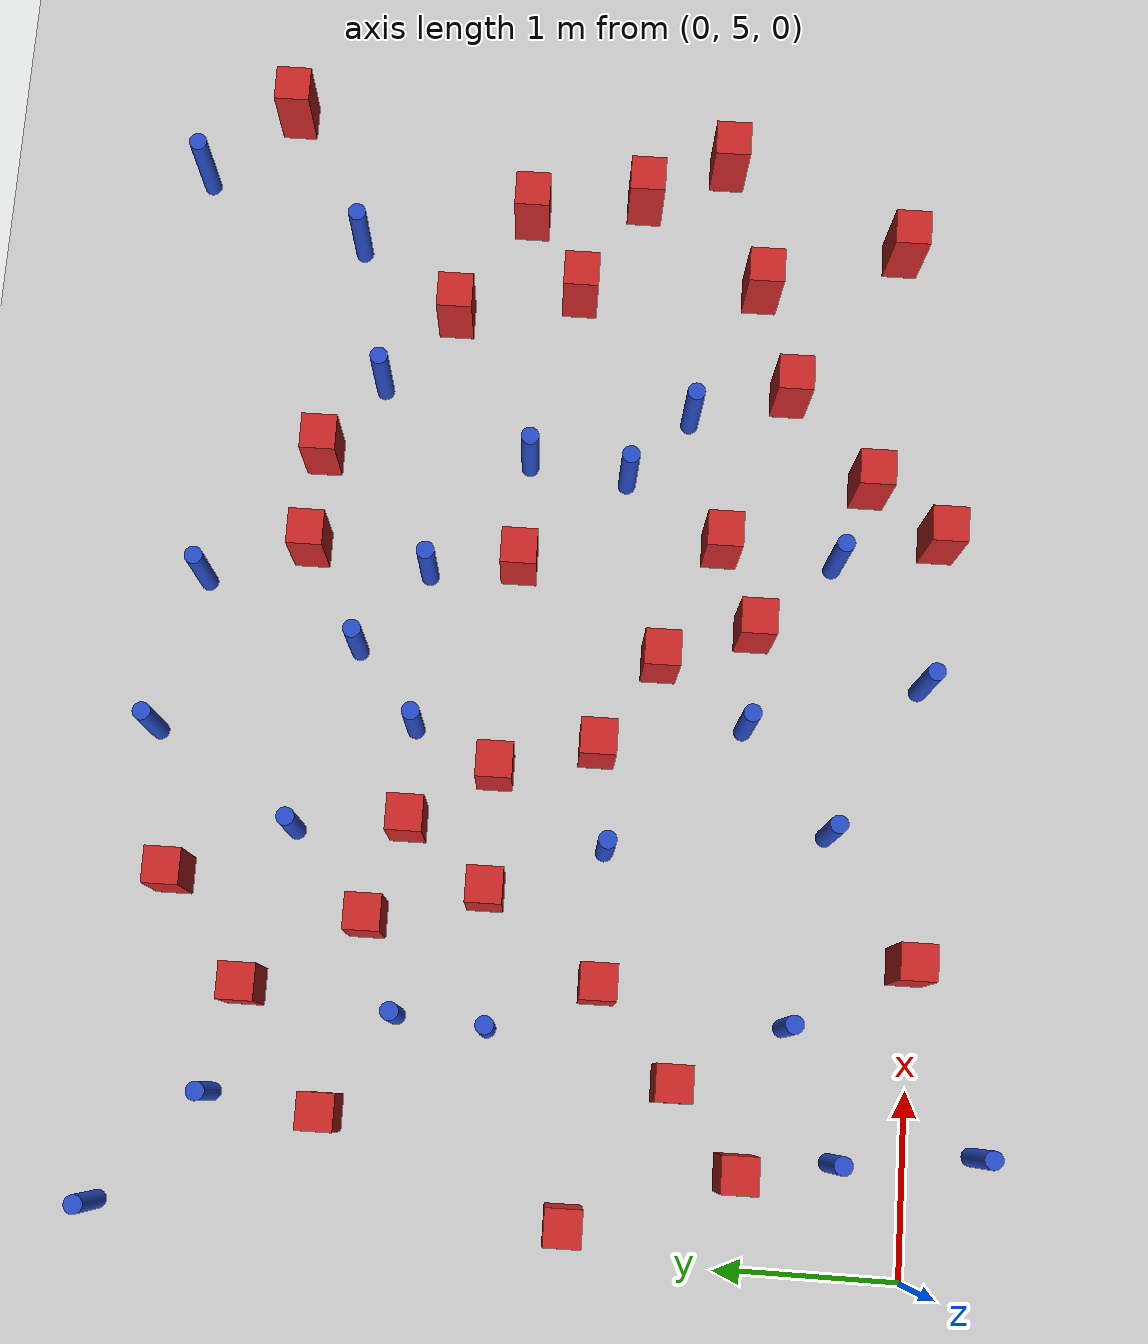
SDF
<sdf version="1.6">
 <world name="default">
  <model name="ground_plane">
   <static>1</static>
   <link name="link">
    <collision name="collision">
     <geometry><plane><normal>0 0 1</normal><size>100 100</size></plane></geometry>
     <surface><friction><ode><mu>100</mu><mu2>50</mu2></ode></friction></surface>
    </collision>
    <visual name="visual">
     <cast_shadows>0</cast_shadows>
     <geometry><plane><normal>0 0 1</normal><size>100 100</size></plane></geometry>
     <material>
      <ambient>1.0 1.0 1.0 1.0</ambient>
      <diffuse>0.8 0.8 0.8 1.0</diffuse>
      <specular>0.01 0.01 0.01 1.000000</specular>
     </material>
    </visual>
   </link>
  </model>
  <model name="square_post_obstacle3">
   <static>true</static>
   <pose>1.32995403728 8.61130214295 1.91545236811e-07 -7.35059704564e-06 1.12565212e-07 2.39332434364e-05</pose>
   <link name="link">
    <pose>0 0 0.25 0 -0 0</pose>
    <inertial>
     <mass>100</mass>
     <inertia>
      <ixx>0.166667</ixx>
      <ixy>0</ixy>
      <ixz>0</ixz>
      <iyy>0.166667</iyy>
      <iyz>0</iyz>
      <izz>0.166667</izz>
     </inertia>
    </inertial>
    <collision name="collision"><geometry><box><size>.2 .2 .5</size></box></geometry></collision>
    <visual name="visual">
     <geometry><box><size>.2 .2 .5</size></box></geometry>
     <material>
      <script><name>Gazebo/Red</name><uri>file://media/materials/scripts/gazebo.material</uri></script>
     </material>
    </visual>
   </link>
  </model>
  <model name="square_post_obstacle9">
   <static>true</static>
   <pose>4.37427200818 5.32072493143 1.91545236811e-07 -7.35059704564e-06 1.12565212e-07 2.39332434364e-05</pose>
   <link name="link">
    <pose>0 0 0.25 0 -0 0</pose>
    <inertial>
     <mass>100</mass>
     <inertia>
      <ixx>0.166667</ixx>
      <ixy>0</ixy>
      <ixz>0</ixz>
      <iyy>0.166667</iyy>
      <iyz>0</iyz>
      <izz>0.166667</izz>
     </inertia>
    </inertial>
    <collision name="collision"><geometry><box><size>.2 .2 .5</size></box></geometry></collision>
    <visual name="visual">
     <geometry><box><size>.2 .2 .5</size></box></geometry>
     <material>
      <script><name>Gazebo/Red</name><uri>file://media/materials/scripts/gazebo.material</uri></script>
     </material>
    </visual>
   </link>
  </model>
  <model name="square_post_obstacle15">
   <static>true</static>
   <pose>3.79252274136 7.28375643206 1.91545236811e-07 -7.35059704564e-06 1.12565212e-07 2.39332434364e-05</pose>
   <link name="link">
    <pose>0 0 0.25 0 -0 0</pose>
    <inertial>
     <mass>100</mass>
     <inertia>
      <ixx>0.166667</ixx>
      <ixy>0</ixy>
      <ixz>0</ixz>
      <iyy>0.166667</iyy>
      <iyz>0</iyz>
      <izz>0.166667</izz>
     </inertia>
    </inertial>
    <collision name="collision"><geometry><box><size>.2 .2 .5</size></box></geometry></collision>
    <visual name="visual">
     <geometry><box><size>.2 .2 .5</size></box></geometry>
     <material>
      <script><name>Gazebo/Red</name><uri>file://media/materials/scripts/gazebo.material</uri></script>
     </material>
    </visual>
   </link>
  </model>
  <model name="square_post_obstacle17">
   <static>true</static>
   <pose>3.96532546582 6.1500377641 1.91545236811e-07 -7.35059704564e-06 1.12565212e-07 2.39332434364e-05</pose>
   <link name="link">
    <pose>0 0 0.25 0 -0 0</pose>
    <inertial>
     <mass>100</mass>
     <inertia>
      <ixx>0.166667</ixx>
      <ixy>0</ixy>
      <ixz>0</ixz>
      <iyy>0.166667</iyy>
      <iyz>0</iyz>
      <izz>0.166667</izz>
     </inertia>
    </inertial>
    <collision name="collision"><geometry><box><size>.2 .2 .5</size></box></geometry></collision>
    <visual name="visual">
     <geometry><box><size>.2 .2 .5</size></box></geometry>
     <material>
      <script><name>Gazebo/Red</name><uri>file://media/materials/scripts/gazebo.material</uri></script>
     </material>
    </visual>
   </link>
  </model>
  <model name="pole_obstacle21">
   <static>true</static>
   <pose>4.71020864646 6.3569376007 7.38925637345e-09 -8.47170692796e-08 1.24976764786e-08 -1.74513093032e-07</pose>
   <link name="link">
    <pose>0 0 0.3 0 -0 0</pose>
    <inertial>
     <mass>1</mass>
     <inertia><ixx>0.145833</ixx><ixy>0</ixy><ixz>0</ixz><iyy>0.145833</iyy><iyz>0</iyz><izz>0.125</izz></inertia>
    </inertial>
    <collision name="collision">
     <geometry><cylinder><radius>0.05</radius><length>.6</length></cylinder></geometry>
    </collision>
    <visual name="visual">
     <geometry><cylinder><radius>0.05</radius><length>.6</length></cylinder></geometry>
     <material>
      <script><name>Gazebo/Blue</name><uri>file://media/materials/scripts/gazebo.material</uri></script>
     </material>
    </visual>
   </link>
  </model>
  <model name="square_post_obstacle18">
   <static>true</static>
   <pose>5.90849007862 7.34614354488 1.91545236811e-07 -7.35059704564e-06 1.12565212e-07 2.39332434364e-05</pose>
   <link name="link">
    <pose>0 0 0.25 0 -0 0</pose>
    <inertial>
     <mass>100</mass>
     <inertia>
      <ixx>0.166667</ixx>
      <ixy>0</ixy>
      <ixz>0</ixz>
      <iyy>0.166667</iyy>
      <iyz>0</iyz>
      <izz>0.166667</izz>
     </inertia>
    </inertial>
    <collision name="collision"><geometry><box><size>.2 .2 .5</size></box></geometry></collision>
    <visual name="visual">
     <geometry><box><size>.2 .2 .5</size></box></geometry>
     <material>
      <script><name>Gazebo/Red</name><uri>file://media/materials/scripts/gazebo.material</uri></script>
     </material>
    </visual>
   </link>
  </model>
  <model name="square_post_obstacle26">
   <static>true</static>
   <pose>0.688104472067 8.13663412658 1.91545236811e-07 -7.35059704564e-06 1.12565212e-07 2.39332434364e-05</pose>
   <link name="link">
    <pose>0 0 0.25 0 -0 0</pose>
    <inertial>
     <mass>100</mass>
     <inertia>
      <ixx>0.166667</ixx>
      <ixy>0</ixy>
      <ixz>0</ixz>
      <iyy>0.166667</iyy>
      <iyz>0</iyz>
      <izz>0.166667</izz>
     </inertia>
    </inertial>
    <collision name="collision"><geometry><box><size>.2 .2 .5</size></box></geometry></collision>
    <visual name="visual">
     <geometry><box><size>.2 .2 .5</size></box></geometry>
     <material>
      <script><name>Gazebo/Red</name><uri>file://media/materials/scripts/gazebo.material</uri></script>
     </material>
    </visual>
   </link>
  </model>
  <model name="square_post_obstacle30">
   <static>true</static>
   <pose>4.37536552659 8.44583233603 1.91545236811e-07 -7.35059704564e-06 1.12565212e-07 2.39332434364e-05</pose>
   <link name="link">
    <pose>0 0 0.25 0 -0 0</pose>
    <inertial>
     <mass>100</mass>
     <inertia>
      <ixx>0.166667</ixx>
      <ixy>0</ixy>
      <ixz>0</ixz>
      <iyy>0.166667</iyy>
      <iyz>0</iyz>
      <izz>0.166667</izz>
     </inertia>
    </inertial>
    <collision name="collision"><geometry><box><size>.2 .2 .5</size></box></geometry></collision>
    <visual name="visual">
     <geometry><box><size>.2 .2 .5</size></box></geometry>
     <material>
      <script><name>Gazebo/Red</name><uri>file://media/materials/scripts/gazebo.material</uri></script>
     </material>
    </visual>
   </link>
  </model>
  <model name="pole_obstacle36">
   <static>true</static>
   <pose>4.39219433855 7.26131646746 7.38925637345e-09 -8.47170692796e-08 1.24976764786e-08 -1.74513093032e-07</pose>
   <link name="link">
    <pose>0 0 0.3 0 -0 0</pose>
    <inertial>
     <mass>1</mass>
     <inertia><ixx>0.145833</ixx><ixy>0</ixy><ixz>0</ixz><iyy>0.145833</iyy><iyz>0</iyz><izz>0.125</izz></inertia>
    </inertial>
    <collision name="collision">
     <geometry><cylinder><radius>0.05</radius><length>.6</length></cylinder></geometry>
    </collision>
    <visual name="visual">
     <geometry><cylinder><radius>0.05</radius><length>.6</length></cylinder></geometry>
     <material>
      <script><name>Gazebo/Blue</name><uri>file://media/materials/scripts/gazebo.material</uri></script>
     </material>
    </visual>
   </link>
  </model>
  <model name="pole_obstacle37">
   <static>true</static>
   <pose>3.20987365376 4.98909059057 7.38925637345e-09 -8.47170692798e-08 1.24976765033e-08 -1.74513093019e-07</pose>
   <link name="link">
    <pose>0 0 0.3 0 -0 0</pose>
    <inertial>
     <mass>1</mass>
     <inertia><ixx>0.145833</ixx><ixy>0</ixy><ixz>0</ixz><iyy>0.145833</iyy><iyz>0</iyz><izz>0.125</izz></inertia>
    </inertial>
    <collision name="collision">
     <geometry><cylinder><radius>0.05</radius><length>.6</length></cylinder></geometry>
    </collision>
    <visual name="visual">
     <geometry><cylinder><radius>0.05</radius><length>.6</length></cylinder></geometry>
     <material>
      <script><name>Gazebo/Blue</name><uri>file://media/materials/scripts/gazebo.material</uri></script>
     </material>
    </visual>
   </link>
  </model>
  <model name="pole_obstacle45">
   <static>true</static>
   <pose>2.71413868442 9.23738863061 7.38925637345e-09 -8.47170692793e-08 1.24976764408e-08 -1.74513093041e-07</pose>
   <link name="link">
    <pose>0 0 0.3 0 -0 0</pose>
    <inertial>
     <mass>1</mass>
     <inertia><ixx>0.145833</ixx><ixy>0</ixy><ixz>0</ixz><iyy>0.145833</iyy><iyz>0</iyz><izz>0.125</izz></inertia>
    </inertial>
    <collision name="collision">
     <geometry><cylinder><radius>0.05</radius><length>.6</length></cylinder></geometry>
    </collision>
    <visual name="visual">
     <geometry><cylinder><radius>0.05</radius><length>.6</length></cylinder></geometry>
     <material>
      <script><name>Gazebo/Blue</name><uri>file://media/materials/scripts/gazebo.material</uri></script>
     </material>
    </visual>
   </link>
  </model>
  <model name="square_post_obstacle38">
   <static>true</static>
   <pose>5.53180575297 5.98572451092 1.91545236811e-07 -7.35059704564e-06 1.12565212e-07 2.39332434364e-05</pose>
   <link name="link">
    <pose>0 0 0.25 0 -0 0</pose>
    <inertial>
     <mass>100</mass>
     <inertia>
      <ixx>0.166667</ixx>
      <ixy>0</ixy>
      <ixz>0</ixz>
      <iyy>0.166667</iyy>
      <iyz>0</iyz>
      <izz>0.166667</izz>
     </inertia>
    </inertial>
    <collision name="collision"><geometry><box><size>.2 .2 .5</size></box></geometry></collision>
    <visual name="visual">
     <geometry><box><size>.2 .2 .5</size></box></geometry>
     <material>
      <script><name>Gazebo/Red</name><uri>file://media/materials/scripts/gazebo.material</uri></script>
     </material>
    </visual>
   </link>
  </model>
  <model name="square_post_obstacle43">
   <static>true</static>
   <pose>6.04710196183 6.69066100058 1.91545236811e-07 -7.35059704564e-06 1.12565212e-07 2.39332434364e-05</pose>
   <link name="link">
    <pose>0 0 0.25 0 -0 0</pose>
    <inertial>
     <mass>100</mass>
     <inertia>
      <ixx>0.166667</ixx>
      <ixy>0</ixy>
      <ixz>0</ixz>
      <iyy>0.166667</iyy>
      <iyz>0</iyz>
      <izz>0.166667</izz>
     </inertia>
    </inertial>
    <collision name="collision"><geometry><box><size>.2 .2 .5</size></box></geometry></collision>
    <visual name="visual">
     <geometry><box><size>.2 .2 .5</size></box></geometry>
     <material>
      <script><name>Gazebo/Red</name><uri>file://media/materials/scripts/gazebo.material</uri></script>
     </material>
    </visual>
   </link>
  </model>
  <model name="pole_obstacle58">
   <static>true</static>
   <pose>6.02126960328 9.26925186249 7.38925637345e-09 -8.471706928e-08 1.24976765081e-08 -1.74513093015e-07</pose>
   <link name="link">
    <pose>0 0 0.3 0 -0 0</pose>
    <inertial>
     <mass>1</mass>
     <inertia><ixx>0.145833</ixx><ixy>0</ixy><ixz>0</ixz><iyy>0.145833</iyy><iyz>0</iyz><izz>0.125</izz></inertia>
    </inertial>
    <collision name="collision">
     <geometry><cylinder><radius>0.05</radius><length>.6</length></cylinder></geometry>
    </collision>
    <visual name="visual">
     <geometry><cylinder><radius>0.05</radius><length>.6</length></cylinder></geometry>
     <material>
      <script><name>Gazebo/Blue</name><uri>file://media/materials/scripts/gazebo.material</uri></script>
     </material>
    </visual>
   </link>
  </model>
  <model name="pole_obstacle65">
   <static>true</static>
   <pose>1.22317918003 7.78467826907 7.38925637345e-09 -8.47170692799e-08 1.24976765033e-08 -1.74513093018e-07</pose>
   <link name="link">
    <pose>0 0 0.3 0 -0 0</pose>
    <inertial>
     <mass>1</mass>
     <inertia><ixx>0.145833</ixx><ixy>0</ixy><ixz>0</ixz><iyy>0.145833</iyy><iyz>0</iyz><izz>0.125</izz></inertia>
    </inertial>
    <collision name="collision">
     <geometry><cylinder><radius>0.05</radius><length>.6</length></cylinder></geometry>
    </collision>
    <visual name="visual">
     <geometry><cylinder><radius>0.05</radius><length>.6</length></cylinder></geometry>
     <material>
      <script><name>Gazebo/Blue</name><uri>file://media/materials/scripts/gazebo.material</uri></script>
     </material>
    </visual>
   </link>
  </model>
  <model name="square_post_obstacle57">
   <static>true</static>
   <pose>1.4524426103 6.70452979506 1.91545236811e-07 -7.35059704564e-06 1.12565212e-07 2.39332434364e-05</pose>
   <link name="link">
    <pose>0 0 0.25 0 -0 0</pose>
    <inertial>
     <mass>100</mass>
     <inertia>
      <ixx>0.166667</ixx>
      <ixy>0</ixy>
      <ixz>0</ixz>
      <iyy>0.166667</iyy>
      <iyz>0</iyz>
      <izz>0.166667</izz>
     </inertia>
    </inertial>
    <collision name="collision"><geometry><box><size>.2 .2 .5</size></box></geometry></collision>
    <visual name="visual">
     <geometry><box><size>.2 .2 .5</size></box></geometry>
     <material>
      <script><name>Gazebo/Red</name><uri>file://media/materials/scripts/gazebo.material</uri></script>
     </material>
    </visual>
   </link>
  </model>
  <model name="pole_obstacle69">
   <static>true</static>
   <pose>3.24047823936 8.15170120117 7.38925637345e-09 -8.47170692793e-08 1.24976764408e-08 -1.74513093041e-07</pose>
   <link name="link">
    <pose>0 0 0.3 0 -0 0</pose>
    <inertial>
     <mass>1</mass>
     <inertia><ixx>0.145833</ixx><ixy>0</ixy><ixz>0</ixz><iyy>0.145833</iyy><iyz>0</iyz><izz>0.125</izz></inertia>
    </inertial>
    <collision name="collision">
     <geometry><cylinder><radius>0.05</radius><length>.6</length></cylinder></geometry>
    </collision>
    <visual name="visual">
     <geometry><cylinder><radius>0.05</radius><length>.6</length></cylinder></geometry>
     <material>
      <script><name>Gazebo/Blue</name><uri>file://media/materials/scripts/gazebo.material</uri></script>
     </material>
    </visual>
   </link>
  </model>
  <model name="square_post_obstacle59">
   <static>true</static>
   <pose>3.48178771078 5.9424249104 1.91545236811e-07 -7.35059704564e-06 1.12565212e-07 2.39332434364e-05</pose>
   <link name="link">
    <pose>0 0 0.25 0 -0 0</pose>
    <inertial>
     <mass>100</mass>
     <inertia>
      <ixx>0.166667</ixx>
      <ixy>0</ixy>
      <ixz>0</ixz>
      <iyy>0.166667</iyy>
      <iyz>0</iyz>
      <izz>0.166667</izz>
     </inertia>
    </inertial>
    <collision name="collision"><geometry><box><size>.2 .2 .5</size></box></geometry></collision>
    <visual name="visual">
     <geometry><box><size>.2 .2 .5</size></box></geometry>
     <material>
      <script><name>Gazebo/Red</name><uri>file://media/materials/scripts/gazebo.material</uri></script>
     </material>
    </visual>
   </link>
  </model>
  <model name="pole_obstacle71">
   <static>true</static>
   <pose>2.20041523312 8.41693557225 7.38925637345e-09 -8.47170692793e-08 1.24976764408e-08 -1.74513093041e-07</pose>
   <link name="link">
    <pose>0 0 0.3 0 -0 0</pose>
    <inertial>
     <mass>1</mass>
     <inertia><ixx>0.145833</ixx><ixy>0</ixy><ixz>0</ixz><iyy>0.145833</iyy><iyz>0</iyz><izz>0.125</izz></inertia>
    </inertial>
    <collision name="collision">
     <geometry><cylinder><radius>0.05</radius><length>.6</length></cylinder></geometry>
    </collision>
    <visual name="visual">
     <geometry><cylinder><radius>0.05</radius><length>.6</length></cylinder></geometry>
     <material>
      <script><name>Gazebo/Blue</name><uri>file://media/materials/scripts/gazebo.material</uri></script>
     </material>
    </visual>
   </link>
  </model>
  <model name="pole_obstacle77">
   <static>true</static>
   <pose>1.29233889827 5.6801205485 7.38925637345e-09 -8.47170692799e-08 1.24976765033e-08 -1.74513093018e-07</pose>
   <link name="link">
    <pose>0 0 0.3 0 -0 0</pose>
    <inertial>
     <mass>1</mass>
     <inertia><ixx>0.145833</ixx><ixy>0</ixy><ixz>0</ixz><iyy>0.145833</iyy><iyz>0</iyz><izz>0.125</izz></inertia>
    </inertial>
    <collision name="collision">
     <geometry><cylinder><radius>0.05</radius><length>.6</length></cylinder></geometry>
    </collision>
    <visual name="visual">
     <geometry><cylinder><radius>0.05</radius><length>.6</length></cylinder></geometry>
     <material>
      <script><name>Gazebo/Blue</name><uri>file://media/materials/scripts/gazebo.material</uri></script>
     </material>
    </visual>
   </link>
  </model>
  <model name="pole_obstacle79">
   <static>true</static>
   <pose>3.70388951045 7.78917880475 7.38925637345e-09 -8.47170692798e-08 1.24976765033e-08 -1.74513093019e-07</pose>
   <link name="link">
    <pose>0 0 0.3 0 -0 0</pose>
    <inertial>
     <mass>1</mass>
     <inertia><ixx>0.145833</ixx><ixy>0</ixy><ixz>0</ixz><iyy>0.145833</iyy><iyz>0</iyz><izz>0.125</izz></inertia>
    </inertial>
    <collision name="collision">
     <geometry><cylinder><radius>0.05</radius><length>.6</length></cylinder></geometry>
    </collision>
    <visual name="visual">
     <geometry><cylinder><radius>0.05</radius><length>.6</length></cylinder></geometry>
     <material>
      <script><name>Gazebo/Blue</name><uri>file://media/materials/scripts/gazebo.material</uri></script>
     </material>
    </visual>
   </link>
  </model>
  <model name="pole_obstacle87">
   <static>true</static>
   <pose>4.32274226453 6.69839151001 7.38925637345e-09 -8.47170692796e-08 1.24976764786e-08 -1.74513093032e-07</pose>
   <link name="link">
    <pose>0 0 0.3 0 -0 0</pose>
    <inertial>
     <mass>1</mass>
     <inertia><ixx>0.145833</ixx><ixy>0</ixy><ixz>0</ixz><iyy>0.145833</iyy><iyz>0</iyz><izz>0.125</izz></inertia>
    </inertial>
    <collision name="collision">
     <geometry><cylinder><radius>0.05</radius><length>.6</length></cylinder></geometry>
    </collision>
    <visual name="visual">
     <geometry><cylinder><radius>0.05</radius><length>.6</length></cylinder></geometry>
     <material>
      <script><name>Gazebo/Blue</name><uri>file://media/materials/scripts/gazebo.material</uri></script>
     </material>
    </visual>
   </link>
  </model>
  <model name="pole_obstacle88">
   <static>true</static>
   <pose>0.753379336458 8.74926171377 7.38925637345e-09 -8.47170692797e-08 1.249767648e-08 -1.74513093032e-07</pose>
   <link name="link">
    <pose>0 0 0.3 0 -0 0</pose>
    <inertial>
     <mass>1</mass>
     <inertia><ixx>0.145833</ixx><ixy>0</ixy><ixz>0</ixz><iyy>0.145833</iyy><iyz>0</iyz><izz>0.125</izz></inertia>
    </inertial>
    <collision name="collision">
     <geometry><cylinder><radius>0.05</radius><length>.6</length></cylinder></geometry>
    </collision>
    <visual name="visual">
     <geometry><cylinder><radius>0.05</radius><length>.6</length></cylinder></geometry>
     <material>
      <script><name>Gazebo/Blue</name><uri>file://media/materials/scripts/gazebo.material</uri></script>
     </material>
    </visual>
   </link>
  </model>
  <model name="pole_obstacle89">
   <static>true</static>
   <pose>0.150378482816 9.31053766181 7.38925637345e-09 -8.47170692796e-08 1.2497676475e-08 -1.74513093035e-07</pose>
   <link name="link">
    <pose>0 0 0.3 0 -0 0</pose>
    <inertial>
     <mass>1</mass>
     <inertia><ixx>0.145833</ixx><ixy>0</ixy><ixz>0</ixz><iyy>0.145833</iyy><iyz>0</iyz><izz>0.125</izz></inertia>
    </inertial>
    <collision name="collision">
     <geometry><cylinder><radius>0.05</radius><length>.6</length></cylinder></geometry>
    </collision>
    <visual name="visual">
     <geometry><cylinder><radius>0.05</radius><length>.6</length></cylinder></geometry>
     <material>
      <script><name>Gazebo/Blue</name><uri>file://media/materials/scripts/gazebo.material</uri></script>
     </material>
    </visual>
   </link>
  </model>
  <model name="square_post_obstacle82">
   <static>true</static>
   <pose>2.5974802898 7.33618611122 1.91545236811e-07 -7.35059704564e-06 1.12565212e-07 2.39332434364e-05</pose>
   <link name="link">
    <pose>0 0 0.25 0 -0 0</pose>
    <inertial>
     <mass>100</mass>
     <inertia>
      <ixx>0.166667</ixx>
      <ixy>0</ixy>
      <ixz>0</ixz>
      <iyy>0.166667</iyy>
      <iyz>0</iyz>
      <izz>0.166667</izz>
     </inertia>
    </inertial>
    <collision name="collision"><geometry><box><size>.2 .2 .5</size></box></geometry></collision>
    <visual name="visual">
     <geometry><box><size>.2 .2 .5</size></box></geometry>
     <material>
      <script><name>Gazebo/Red</name><uri>file://media/materials/scripts/gazebo.material</uri></script>
     </material>
    </visual>
   </link>
  </model>
  <model name="square_post_obstacle92">
   <static>true</static>
   <pose>3.82266795488 8.4688705805 1.91545236811e-07 -7.35059704564e-06 1.12565212e-07 2.39332434364e-05</pose>
   <link name="link">
    <pose>0 0 0.25 0 -0 0</pose>
    <inertial>
     <mass>100</mass>
     <inertia>
      <ixx>0.166667</ixx>
      <ixy>0</ixy>
      <ixz>0</ixz>
      <iyy>0.166667</iyy>
      <iyz>0</iyz>
      <izz>0.166667</izz>
     </inertia>
    </inertial>
    <collision name="collision"><geometry><box><size>.2 .2 .5</size></box></geometry></collision>
    <visual name="visual">
     <geometry><box><size>.2 .2 .5</size></box></geometry>
     <material>
      <script><name>Gazebo/Red</name><uri>file://media/materials/scripts/gazebo.material</uri></script>
     </material>
    </visual>
   </link>
  </model>
  <model name="pole_obstacle101">
   <static>true</static>
   <pose>0.676264296835 4.63743167553 7.38925637345e-09 -8.471706928e-08 1.24976765086e-08 -1.74513093015e-07</pose>
   <link name="link">
    <pose>0 0 0.3 0 -0 0</pose>
    <inertial>
     <mass>1</mass>
     <inertia><ixx>0.145833</ixx><ixy>0</ixy><ixz>0</ixz><iyy>0.145833</iyy><iyz>0</iyz><izz>0.125</izz></inertia>
    </inertial>
    <collision name="collision">
     <geometry><cylinder><radius>0.05</radius><length>.6</length></cylinder></geometry>
    </collision>
    <visual name="visual">
     <geometry><cylinder><radius>0.05</radius><length>.6</length></cylinder></geometry>
     <material>
      <script><name>Gazebo/Blue</name><uri>file://media/materials/scripts/gazebo.material</uri></script>
     </material>
    </visual>
   </link>
  </model>
  <model name="pole_obstacle102">
   <static>true</static>
   <pose>4.80374300457 8.13453187196 7.38925637345e-09 -8.471706928e-08 1.24976765081e-08 -1.74513093015e-07</pose>
   <link name="link">
    <pose>0 0 0.3 0 -0 0</pose>
    <inertial>
     <mass>1</mass>
     <inertia><ixx>0.145833</ixx><ixy>0</ixy><ixz>0</ixz><iyy>0.145833</iyy><iyz>0</iyz><izz>0.125</izz></inertia>
    </inertial>
    <collision name="collision">
     <geometry><cylinder><radius>0.05</radius><length>.6</length></cylinder></geometry>
    </collision>
    <visual name="visual">
     <geometry><cylinder><radius>0.05</radius><length>.6</length></cylinder></geometry>
     <material>
      <script><name>Gazebo/Blue</name><uri>file://media/materials/scripts/gazebo.material</uri></script>
     </material>
    </visual>
   </link>
  </model>
  <model name="pole_obstacle110">
   <static>true</static>
   <pose>2.18846342655 6.7037906875 7.38925637345e-09 -8.47170692798e-08 1.24976765033e-08 -1.74513093019e-07</pose>
   <link name="link">
    <pose>0 0 0.3 0 -0 0</pose>
    <inertial>
     <mass>1</mass>
     <inertia><ixx>0.145833</ixx><ixy>0</ixy><ixz>0</ixz><iyy>0.145833</iyy><iyz>0</iyz><izz>0.125</izz></inertia>
    </inertial>
    <collision name="collision">
     <geometry><cylinder><radius>0.05</radius><length>.6</length></cylinder></geometry>
    </collision>
    <visual name="visual">
     <geometry><cylinder><radius>0.05</radius><length>.6</length></cylinder></geometry>
     <material>
      <script><name>Gazebo/Blue</name><uri>file://media/materials/scripts/gazebo.material</uri></script>
     </material>
    </visual>
   </link>
  </model>
  <model name="square_post_obstacle106">
   <static>true</static>
   <pose>3.27297281079 6.46058493358 1.91545236811e-07 -7.35059704564e-06 1.12565212e-07 2.39332434364e-05</pose>
   <link name="link">
    <pose>0 0 0.25 0 -0 0</pose>
    <inertial>
     <mass>100</mass>
     <inertia>
      <ixx>0.166667</ixx>
      <ixy>0</ixy>
      <ixz>0</ixz>
      <iyy>0.166667</iyy>
      <iyz>0</iyz>
      <izz>0.166667</izz>
     </inertia>
    </inertial>
    <collision name="collision"><geometry><box><size>.2 .2 .5</size></box></geometry></collision>
    <visual name="visual">
     <geometry><box><size>.2 .2 .5</size></box></geometry>
     <material>
      <script><name>Gazebo/Red</name><uri>file://media/materials/scripts/gazebo.material</uri></script>
     </material>
    </visual>
   </link>
  </model>
  <model name="square_post_obstacle107">
   <static>true</static>
   <pose>1.9102582236 9.06530625049 1.91545236811e-07 -7.35059704564e-06 1.12565212e-07 2.39332434364e-05</pose>
   <link name="link">
    <pose>0 0 0.25 0 -0 0</pose>
    <inertial>
     <mass>100</mass>
     <inertia>
      <ixx>0.166667</ixx>
      <ixy>0</ixy>
      <ixz>0</ixz>
      <iyy>0.166667</iyy>
      <iyz>0</iyz>
      <izz>0.166667</izz>
     </inertia>
    </inertial>
    <collision name="collision"><geometry><box><size>.2 .2 .5</size></box></geometry></collision>
    <visual name="visual">
     <geometry><box><size>.2 .2 .5</size></box></geometry>
     <material>
      <script><name>Gazebo/Red</name><uri>file://media/materials/scripts/gazebo.material</uri></script>
     </material>
    </visual>
   </link>
  </model>
  <model name="square_post_obstacle109">
   <static>true</static>
   <pose>5.44044197804 7.03720676493 1.91545236811e-07 -7.35059704564e-06 1.12565212e-07 2.39332434364e-05</pose>
   <link name="link">
    <pose>0 0 0.25 0 -0 0</pose>
    <inertial>
     <mass>100</mass>
     <inertia>
      <ixx>0.166667</ixx>
      <ixy>0</ixy>
      <ixz>0</ixz>
      <iyy>0.166667</iyy>
      <iyz>0</iyz>
      <izz>0.166667</izz>
     </inertia>
    </inertial>
    <collision name="collision"><geometry><box><size>.2 .2 .5</size></box></geometry></collision>
    <visual name="visual">
     <geometry><box><size>.2 .2 .5</size></box></geometry>
     <material>
      <script><name>Gazebo/Red</name><uri>file://media/materials/scripts/gazebo.material</uri></script>
     </material>
    </visual>
   </link>
  </model>
  <model name="square_post_obstacle114">
   <static>true</static>
   <pose>1.92107271206 7.34297310349 1.91545236811e-07 -7.35059704564e-06 1.12565212e-07 2.39332434364e-05</pose>
   <link name="link">
    <pose>0 0 0.25 0 -0 0</pose>
    <inertial>
     <mass>100</mass>
     <inertia>
      <ixx>0.166667</ixx>
      <ixy>0</ixy>
      <ixz>0</ixz>
      <iyy>0.166667</iyy>
      <iyz>0</iyz>
      <izz>0.166667</izz>
     </inertia>
    </inertial>
    <collision name="collision"><geometry><box><size>.2 .2 .5</size></box></geometry></collision>
    <visual name="visual">
     <geometry><box><size>.2 .2 .5</size></box></geometry>
     <material>
      <script><name>Gazebo/Red</name><uri>file://media/materials/scripts/gazebo.material</uri></script>
     </material>
    </visual>
   </link>
  </model>
  <model name="pole_obstacle126">
   <static>true</static>
   <pose>2.91993984323 5.96774387358 7.38925637345e-09 -8.47170692798e-08 1.24976765033e-08 -1.74513093019e-07</pose>
   <link name="link">
    <pose>0 0 0.3 0 -0 0</pose>
    <inertial>
     <mass>1</mass>
     <inertia><ixx>0.145833</ixx><ixy>0</ixy><ixz>0</ixz><iyy>0.145833</iyy><iyz>0</iyz><izz>0.125</izz></inertia>
    </inertial>
    <collision name="collision">
     <geometry><cylinder><radius>0.05</radius><length>.6</length></cylinder></geometry>
    </collision>
    <visual name="visual">
     <geometry><cylinder><radius>0.05</radius><length>.6</length></cylinder></geometry>
     <material>
      <script><name>Gazebo/Blue</name><uri>file://media/materials/scripts/gazebo.material</uri></script>
     </material>
    </visual>
   </link>
  </model>
  <model name="pole_obstacle130">
   <static>true</static>
   <pose>2.81039012448 7.79987585241 7.38925637345e-09 -8.47170692798e-08 1.24976765033e-08 -1.74513093019e-07</pose>
   <link name="link">
    <pose>0 0 0.3 0 -0 0</pose>
    <inertial>
     <mass>1</mass>
     <inertia><ixx>0.145833</ixx><ixy>0</ixy><ixz>0</ixz><iyy>0.145833</iyy><iyz>0</iyz><izz>0.125</izz></inertia>
    </inertial>
    <collision name="collision">
     <geometry><cylinder><radius>0.05</radius><length>.6</length></cylinder></geometry>
    </collision>
    <visual name="visual">
     <geometry><cylinder><radius>0.05</radius><length>.6</length></cylinder></geometry>
     <material>
      <script><name>Gazebo/Blue</name><uri>file://media/materials/scripts/gazebo.material</uri></script>
     </material>
    </visual>
   </link>
  </model>
  <model name="square_post_obstacle128">
   <static>true</static>
   <pose>0.190347676111 6.81521321442 1.91545236811e-07 -7.35059704564e-06 1.12565212e-07 2.39332434364e-05</pose>
   <link name="link">
    <pose>0 0 0.25 0 -0 0</pose>
    <inertial>
     <mass>100</mass>
     <inertia>
      <ixx>0.166667</ixx>
      <ixy>0</ixy>
      <ixz>0</ixz>
      <iyy>0.166667</iyy>
      <iyz>0</iyz>
      <izz>0.166667</izz>
     </inertia>
    </inertial>
    <collision name="collision"><geometry><box><size>.2 .2 .5</size></box></geometry></collision>
    <visual name="visual">
     <geometry><box><size>.2 .2 .5</size></box></geometry>
     <material>
      <script><name>Gazebo/Red</name><uri>file://media/materials/scripts/gazebo.material</uri></script>
     </material>
    </visual>
   </link>
  </model>
  <model name="pole_obstacle134">
   <static>true</static>
   <pose>0.597140779396 5.40386312618 7.38925637345e-09 -8.471706928e-08 1.24976765086e-08 -1.74513093015e-07</pose>
   <link name="link">
    <pose>0 0 0.3 0 -0 0</pose>
    <inertial>
     <mass>1</mass>
     <inertia><ixx>0.145833</ixx><ixy>0</ixy><ixz>0</ixz><iyy>0.145833</iyy><iyz>0</iyz><izz>0.125</izz></inertia>
    </inertial>
    <collision name="collision">
     <geometry><cylinder><radius>0.05</radius><length>.6</length></cylinder></geometry>
    </collision>
    <visual name="visual">
     <geometry><cylinder><radius>0.05</radius><length>.6</length></cylinder></geometry>
     <material>
      <script><name>Gazebo/Blue</name><uri>file://media/materials/scripts/gazebo.material</uri></script>
     </material>
    </visual>
   </link>
  </model>
  <model name="pole_obstacle148">
   <static>true</static>
   <pose>5.65208529019 8.32838346051 7.38925637345e-09 -8.471706928e-08 1.24976765081e-08 -1.74513093015e-07</pose>
   <link name="link">
    <pose>0 0 0.3 0 -0 0</pose>
    <inertial>
     <mass>1</mass>
     <inertia><ixx>0.145833</ixx><ixy>0</ixy><ixz>0</ixz><iyy>0.145833</iyy><iyz>0</iyz><izz>0.125</izz></inertia>
    </inertial>
    <collision name="collision">
     <geometry><cylinder><radius>0.05</radius><length>.6</length></cylinder></geometry>
    </collision>
    <visual name="visual">
     <geometry><cylinder><radius>0.05</radius><length>.6</length></cylinder></geometry>
     <material>
      <script><name>Gazebo/Blue</name><uri>file://media/materials/scripts/gazebo.material</uri></script>
     </material>
    </visual>
   </link>
  </model>
  <model name="square_post_obstacle142">
   <static>true</static>
   <pose>5.81548831359 5.16244869217 1.91545236811e-07 -7.35059704564e-06 1.12565212e-07 2.39332434364e-05</pose>
   <link name="link">
    <pose>0 0 0.25 0 -0 0</pose>
    <inertial>
     <mass>100</mass>
     <inertia>
      <ixx>0.166667</ixx>
      <ixy>0</ixy>
      <ixz>0</ixz>
      <iyy>0.166667</iyy>
      <iyz>0</iyz>
      <izz>0.166667</izz>
     </inertia>
    </inertial>
    <collision name="collision"><geometry><box><size>.2 .2 .5</size></box></geometry></collision>
    <visual name="visual">
     <geometry><box><size>.2 .2 .5</size></box></geometry>
     <material>
      <script><name>Gazebo/Red</name><uri>file://media/materials/scripts/gazebo.material</uri></script>
     </material>
    </visual>
   </link>
  </model>
  <model name="square_post_obstacle149">
   <static>true</static>
   <pose>1.73564739165 7.97818890116 1.91545236811e-07 -7.35059704564e-06 1.12565212e-07 2.39332434364e-05</pose>
   <link name="link">
    <pose>0 0 0.25 0 -0 0</pose>
    <inertial>
     <mass>100</mass>
     <inertia>
      <ixx>0.166667</ixx>
      <ixy>0</ixy>
      <ixz>0</ixz>
      <iyy>0.166667</iyy>
      <iyz>0</iyz>
      <izz>0.166667</izz>
     </inertia>
    </inertial>
    <collision name="collision"><geometry><box><size>.2 .2 .5</size></box></geometry></collision>
    <visual name="visual">
     <geometry><box><size>.2 .2 .5</size></box></geometry>
     <material>
      <script><name>Gazebo/Red</name><uri>file://media/materials/scripts/gazebo.material</uri></script>
     </material>
    </visual>
   </link>
  </model>
  <model name="square_post_obstacle153">
   <static>true</static>
   <pose>1.66454578326 5.02444970694 1.91545236811e-07 -7.35059704564e-06 1.12565212e-07 2.39332434364e-05</pose>
   <link name="link">
    <pose>0 0 0.25 0 -0 0</pose>
    <inertial>
     <mass>100</mass>
     <inertia>
      <ixx>0.166667</ixx>
      <ixy>0</ixy>
      <ixz>0</ixz>
      <iyy>0.166667</iyy>
      <iyz>0</iyz>
      <izz>0.166667</izz>
     </inertia>
    </inertial>
    <collision name="collision"><geometry><box><size>.2 .2 .5</size></box></geometry></collision>
    <visual name="visual">
     <geometry><box><size>.2 .2 .5</size></box></geometry>
     <material>
      <script><name>Gazebo/Red</name><uri>file://media/materials/scripts/gazebo.material</uri></script>
     </material>
    </visual>
   </link>
  </model>
  <model name="square_post_obstacle156">
   <static>true</static>
   <pose>6.29638155677 6.21140241695 1.91545236811e-07 -7.35059704564e-06 1.12565212e-07 2.39332434364e-05</pose>
   <link name="link">
    <pose>0 0 0.25 0 -0 0</pose>
    <inertial>
     <mass>100</mass>
     <inertia>
      <ixx>0.166667</ixx>
      <ixy>0</ixy>
      <ixz>0</ixz>
      <iyy>0.166667</iyy>
      <iyz>0</iyz>
      <izz>0.166667</izz>
     </inertia>
    </inertial>
    <collision name="collision"><geometry><box><size>.2 .2 .5</size></box></geometry></collision>
    <visual name="visual">
     <geometry><box><size>.2 .2 .5</size></box></geometry>
     <material>
      <script><name>Gazebo/Red</name><uri>file://media/materials/scripts/gazebo.material</uri></script>
     </material>
    </visual>
   </link>
  </model>
  <model name="pole_obstacle165">
   <static>true</static>
   <pose>2.351135486 5.48433703063 7.38925637345e-09 -8.47170692798e-08 1.24976765033e-08 -1.74513093019e-07</pose>
   <link name="link">
    <pose>0 0 0.3 0 -0 0</pose>
    <inertial>
     <mass>1</mass>
     <inertia><ixx>0.145833</ixx><ixy>0</ixy><ixz>0</ixz><iyy>0.145833</iyy><iyz>0</iyz><izz>0.125</izz></inertia>
    </inertial>
    <collision name="collision">
     <geometry><cylinder><radius>0.05</radius><length>.6</length></cylinder></geometry>
    </collision>
    <visual name="visual">
     <geometry><cylinder><radius>0.05</radius><length>.6</length></cylinder></geometry>
     <material>
      <script><name>Gazebo/Blue</name><uri>file://media/materials/scripts/gazebo.material</uri></script>
     </material>
    </visual>
   </link>
  </model>
  <model name="square_post_obstacle159">
   <static>true</static>
   <pose>2.27824833495 7.79752584582 1.91545236811e-07 -7.35059704564e-06 1.12565212e-07 2.39332434364e-05</pose>
   <link name="link">
    <pose>0 0 0.25 0 -0 0</pose>
    <inertial>
     <mass>100</mass>
     <inertia>
      <ixx>0.166667</ixx>
      <ixy>0</ixy>
      <ixz>0</ixz>
      <iyy>0.166667</iyy>
      <iyz>0</iyz>
      <izz>0.166667</izz>
     </inertia>
    </inertial>
    <collision name="collision"><geometry><box><size>.2 .2 .5</size></box></geometry></collision>
    <visual name="visual">
     <geometry><box><size>.2 .2 .5</size></box></geometry>
     <material>
      <script><name>Gazebo/Red</name><uri>file://media/materials/scripts/gazebo.material</uri></script>
     </material>
    </visual>
   </link>
  </model>
  <model name="pole_obstacle179">
   <static>true</static>
   <pose>3.59177127424 9.04761101445 7.38925637345e-09 -8.47170692793e-08 1.24976764408e-08 -1.74513093041e-07</pose>
   <link name="link">
    <pose>0 0 0.3 0 -0 0</pose>
    <inertial>
     <mass>1</mass>
     <inertia><ixx>0.145833</ixx><ixy>0</ixy><ixz>0</ixz><iyy>0.145833</iyy><iyz>0</iyz><izz>0.125</izz></inertia>
    </inertial>
    <collision name="collision">
     <geometry><cylinder><radius>0.05</radius><length>.6</length></cylinder></geometry>
    </collision>
    <visual name="visual">
     <geometry><cylinder><radius>0.05</radius><length>.6</length></cylinder></geometry>
     <material>
      <script><name>Gazebo/Blue</name><uri>file://media/materials/scripts/gazebo.material</uri></script>
     </material>
    </visual>
   </link>
  </model>
  <model name="square_post_obstacle176">
   <static>true</static>
   <pose>0.512422474236 5.91880554439 1.91545236811e-07 -7.35059704564e-06 1.12565212e-07 2.39332434364e-05</pose>
   <link name="link">
    <pose>0 0 0.25 0 -0 0</pose>
    <inertial>
     <mass>100</mass>
     <inertia>
      <ixx>0.166667</ixx>
      <ixy>0</ixy>
      <ixz>0</ixz>
      <iyy>0.166667</iyy>
      <iyz>0</iyz>
      <izz>0.166667</izz>
     </inertia>
    </inertial>
    <collision name="collision"><geometry><box><size>.2 .2 .5</size></box></geometry></collision>
    <visual name="visual">
     <geometry><box><size>.2 .2 .5</size></box></geometry>
     <material>
      <script><name>Gazebo/Red</name><uri>file://media/materials/scripts/gazebo.material</uri></script>
     </material>
    </visual>
   </link>
  </model>
  <model name="square_post_obstacle178">
   <static>true</static>
   <pose>0.954168999696 6.28022178342 1.91545236811e-07 -7.35059704564e-06 1.12565212e-07 2.39332434364e-05</pose>
   <link name="link">
    <pose>0 0 0.25 0 -0 0</pose>
    <inertial>
     <mass>100</mass>
     <inertia>
      <ixx>0.166667</ixx>
      <ixy>0</ixy>
      <ixz>0</ixz>
      <iyy>0.166667</iyy>
      <iyz>0</iyz>
      <izz>0.166667</izz>
     </inertia>
    </inertial>
    <collision name="collision"><geometry><box><size>.2 .2 .5</size></box></geometry></collision>
    <visual name="visual">
     <geometry><box><size>.2 .2 .5</size></box></geometry>
     <material>
      <script><name>Gazebo/Red</name><uri>file://media/materials/scripts/gazebo.material</uri></script>
     </material>
    </visual>
   </link>
  </model>
  <model name="pole_obstacle182">
   <static>true</static>
   <pose>1.18384333957 7.28594504758 7.38925637345e-09 -8.47170692799e-08 1.24976765033e-08 -1.74513093018e-07</pose>
   <link name="link">
    <pose>0 0 0.3 0 -0 0</pose>
    <inertial>
     <mass>1</mass>
     <inertia><ixx>0.145833</ixx><ixy>0</ixy><ixz>0</ixz><iyy>0.145833</iyy><iyz>0</iyz><izz>0.125</izz></inertia>
    </inertial>
    <collision name="collision">
     <geometry><cylinder><radius>0.05</radius><length>.6</length></cylinder></geometry>
    </collision>
    <visual name="visual">
     <geometry><cylinder><radius>0.05</radius><length>.6</length></cylinder></geometry>
     <material>
      <script><name>Gazebo/Blue</name><uri>file://media/materials/scripts/gazebo.material</uri></script>
     </material>
    </visual>
   </link>
  </model>
  <model name="square_post_obstacle182">
   <static>true</static>
   <pose>4.07345474279 4.91203120815 1.91545236811e-07 -7.35059704564e-06 1.12565212e-07 2.39332434364e-05</pose>
   <link name="link">
    <pose>0 0 0.25 0 -0 0</pose>
    <inertial>
     <mass>100</mass>
     <inertia>
      <ixx>0.166667</ixx>
      <ixy>0</ixy>
      <ixz>0</ixz>
      <iyy>0.166667</iyy>
      <iyz>0</iyz>
      <izz>0.166667</izz>
     </inertia>
    </inertial>
    <collision name="collision"><geometry><box><size>.2 .2 .5</size></box></geometry></collision>
    <visual name="visual">
     <geometry><box><size>.2 .2 .5</size></box></geometry>
     <material>
      <script><name>Gazebo/Red</name><uri>file://media/materials/scripts/gazebo.material</uri></script>
     </material>
    </visual>
   </link>
  </model>
  <model name="square_post_obstacle196">
   <static>true</static>
   <pose>4.89941261358 5.79462058153 1.91545236811e-07 -7.35059704564e-06 1.12565212e-07 2.39332434364e-05</pose>
   <link name="link">
    <pose>0 0 0.25 0 -0 0</pose>
    <inertial>
     <mass>100</mass>
     <inertia>
      <ixx>0.166667</ixx>
      <ixy>0</ixy>
      <ixz>0</ixz>
      <iyy>0.166667</iyy>
      <iyz>0</iyz>
      <izz>0.166667</izz>
     </inertia>
    </inertial>
    <collision name="collision"><geometry><box><size>.2 .2 .5</size></box></geometry></collision>
    <visual name="visual">
     <geometry><box><size>.2 .2 .5</size></box></geometry>
     <material>
      <script><name>Gazebo/Red</name><uri>file://media/materials/scripts/gazebo.material</uri></script>
     </material>
    </visual>
   </link>
  </model>
  <model name="square_post_obstacle202">
   <static>true</static>
   <pose>5.26418328331 7.74713514681 1.91545236811e-07 -7.35059704564e-06 1.12565212e-07 2.39332434364e-05</pose>
   <link name="link">
    <pose>0 0 0.25 0 -0 0</pose>
    <inertial>
     <mass>100</mass>
     <inertia>
      <ixx>0.166667</ixx>
      <ixy>0</ixy>
      <ixz>0</ixz>
      <iyy>0.166667</iyy>
      <iyz>0</iyz>
      <izz>0.166667</izz>
     </inertia>
    </inertial>
    <collision name="collision"><geometry><box><size>.2 .2 .5</size></box></geometry></collision>
    <visual name="visual">
     <geometry><box><size>.2 .2 .5</size></box></geometry>
     <material>
      <script><name>Gazebo/Red</name><uri>file://media/materials/scripts/gazebo.material</uri></script>
     </material>
    </visual>
   </link>
  </model>
  <model name="square_post_obstacle207">
   <static>true</static>
   <pose>2.76001589234 6.7805753669 1.91545236811e-07 -7.35059704564e-06 1.12565212e-07 2.39332434364e-05</pose>
   <link name="link">
    <pose>0 0 0.25 0 -0 0</pose>
    <inertial>
     <mass>100</mass>
     <inertia>
      <ixx>0.166667</ixx>
      <ixy>0</ixy>
      <ixz>0</ixz>
      <iyy>0.166667</iyy>
      <iyz>0</iyz>
      <izz>0.166667</izz>
     </inertia>
    </inertial>
    <collision name="collision"><geometry><box><size>.2 .2 .5</size></box></geometry></collision>
    <visual name="visual">
     <geometry><box><size>.2 .2 .5</size></box></geometry>
     <material>
      <script><name>Gazebo/Red</name><uri>file://media/materials/scripts/gazebo.material</uri></script>
     </material>
    </visual>
   </link>
  </model>
  <model name="pole_obstacle198">
   <static>true</static>
   <pose>3.8943402731 5.4990199879 7.38925637345e-09 -8.47170692798e-08 1.24976765033e-08 -1.74513093019e-07</pose>
   <link name="link">
    <pose>0 0 0.3 0 -0 0</pose>
    <inertial>
     <mass>1</mass>
     <inertia><ixx>0.145833</ixx><ixy>0</ixy><ixz>0</ixz><iyy>0.145833</iyy><iyz>0</iyz><izz>0.125</izz></inertia>
    </inertial>
    <collision name="collision">
     <geometry><cylinder><radius>0.05</radius><length>.6</length></cylinder></geometry>
    </collision>
    <visual name="visual">
     <geometry><cylinder><radius>0.05</radius><length>.6</length></cylinder></geometry>
     <material>
      <script><name>Gazebo/Blue</name><uri>file://media/materials/scripts/gazebo.material</uri></script>
     </material>
    </visual>
   </link>
  </model>
  <model name="square_post_obstacle218">
   <static>true</static>
   <pose>6.47125251818 8.7795831913 1.91545236811e-07 -7.35059704564e-06 1.12565212e-07 2.39332434364e-05</pose>
   <link name="link">
    <pose>0 0 0.25 0 -0 0</pose>
    <inertial>
     <mass>100</mass>
     <inertia>
      <ixx>0.166667</ixx>
      <ixy>0</ixy>
      <ixz>0</ixz>
      <iyy>0.166667</iyy>
      <iyz>0</iyz>
      <izz>0.166667</izz>
     </inertia>
    </inertial>
    <collision name="collision"><geometry><box><size>.2 .2 .5</size></box></geometry></collision>
    <visual name="visual">
     <geometry><box><size>.2 .2 .5</size></box></geometry>
     <material>
      <script><name>Gazebo/Red</name><uri>file://media/materials/scripts/gazebo.material</uri></script>
     </material>
    </visual>
   </link>
  </model>
 </world>
</sdf>
